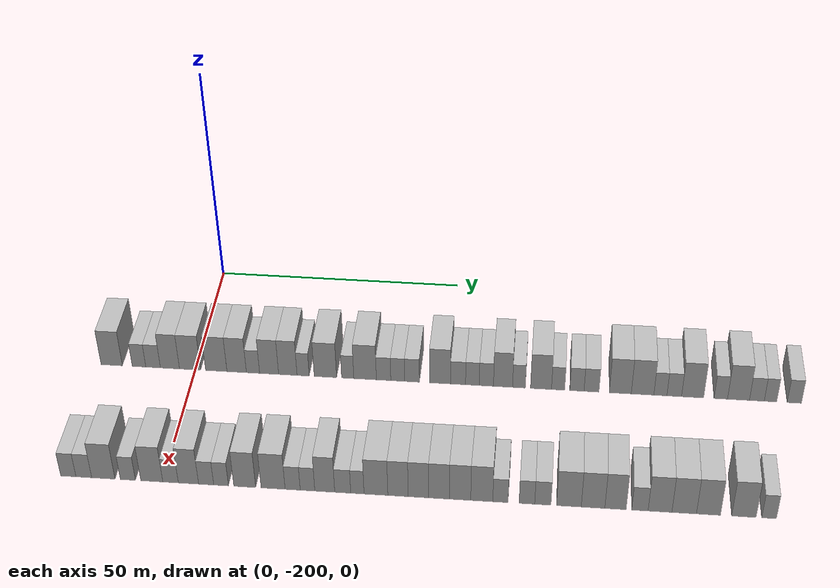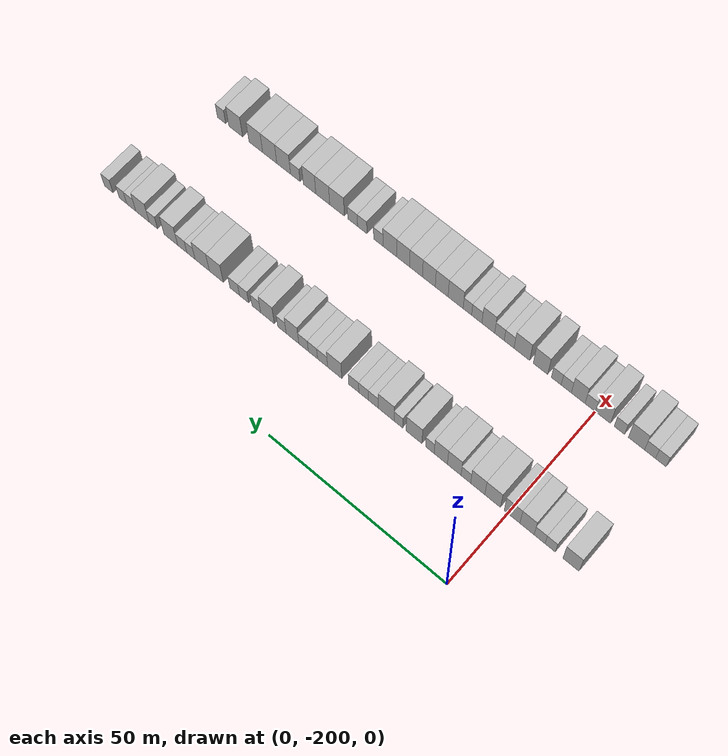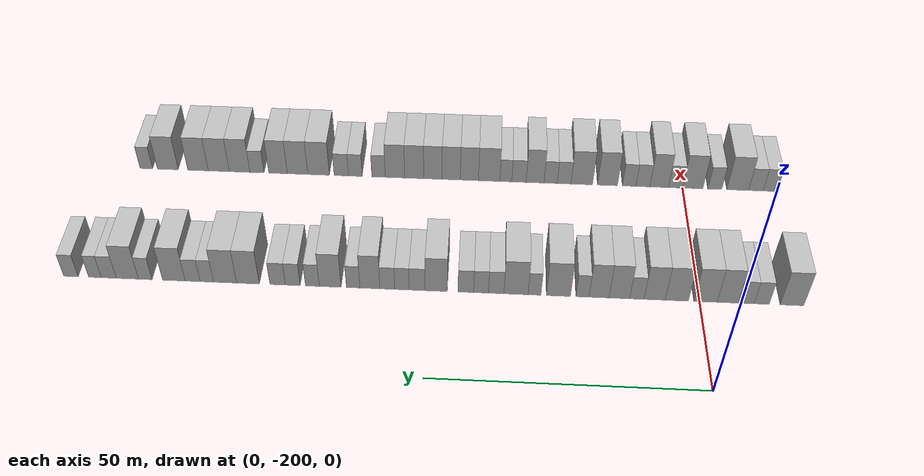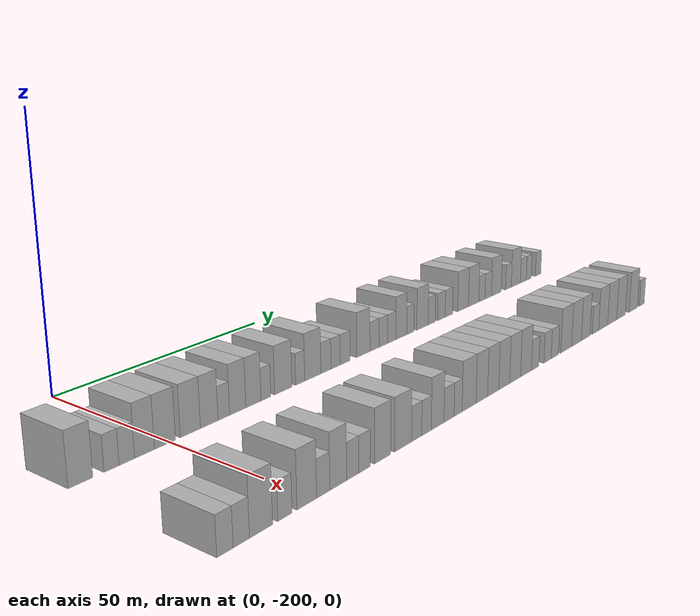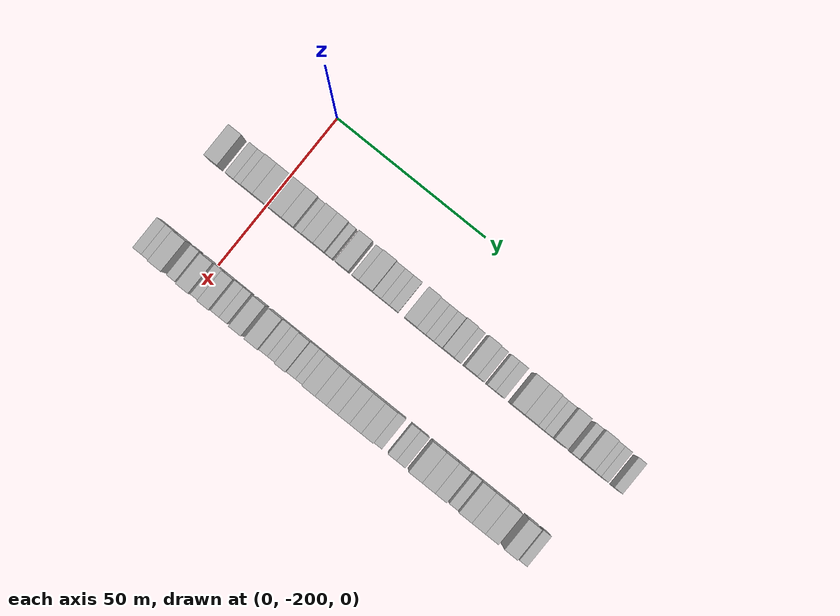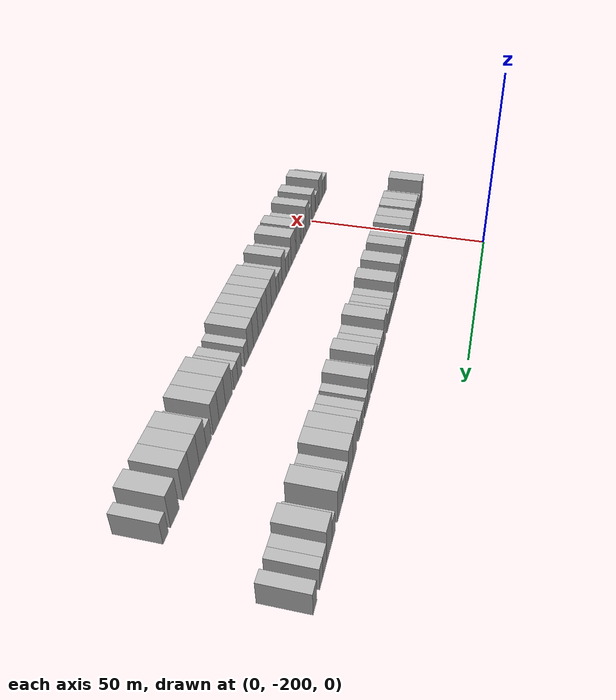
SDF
<sdf version="1.6">
 <world name="default">
  <model name="building_1">
   <static>1</static>
   <pose>25.0000 -216.8449 0 0.000000 0.000000 0.000000</pose>
   <link name="link">
    <pose>0 0 4.50 0 0 0</pose>
    <collision name="collision"><geometry><box><size>10.0000 4.3102 9.0000</size></box></geometry></collision>
    <visual name="visual">
     <cast_shadows>0</cast_shadows>
     <geometry><box><size>10.0000 4.3102 9.0000</size></box></geometry>
     <material>
      <script>
       <uri>model://HANNAS_wall/materials/scripts</uri>
       <uri>model://HANNAS_wall/materials/textures</uri>
       <name>vrc/HANNAS_wall</name>
      </script>
     </material>
    </visual>
   </link>
  </model>
  <model name="building_2">
   <static>1</static>
   <pose>25.0000 -211.3207 0 0.000000 0.000000 0.000000</pose>
   <link name="link">
    <pose>0 0 3.00 0 0 0</pose>
    <collision name="collision"><geometry><box><size>10.0000 2.7383 6.0000</size></box></geometry></collision>
    <visual name="visual">
     <cast_shadows>0</cast_shadows>
     <geometry><box><size>10.0000 2.7383 6.0000</size></box></geometry>
     <material>
      <script>
       <uri>model://HANNAS_wall/materials/scripts</uri>
       <uri>model://HANNAS_wall/materials/textures</uri>
       <name>vrc/HANNAS_wall</name>
      </script>
     </material>
    </visual>
   </link>
  </model>
  <model name="building_3">
   <static>1</static>
   <pose>25.0000 -208.4802 0 0.000000 0.000000 0.000000</pose>
   <link name="link">
    <pose>0 0 3.00 0 0 0</pose>
    <collision name="collision"><geometry><box><size>10.0000 2.9428 6.0000</size></box></geometry></collision>
    <visual name="visual">
     <cast_shadows>0</cast_shadows>
     <geometry><box><size>10.0000 2.9428 6.0000</size></box></geometry>
     <material>
      <script>
       <uri>model://HANNAS_wall/materials/scripts</uri>
       <uri>model://HANNAS_wall/materials/textures</uri>
       <name>vrc/HANNAS_wall</name>
      </script>
     </material>
    </visual>
   </link>
  </model>
  <model name="building_4">
   <static>1</static>
   <pose>25.0000 -205.0860 0 0.000000 0.000000 0.000000</pose>
   <link name="link">
    <pose>0 0 4.50 0 0 0</pose>
    <collision name="collision"><geometry><box><size>10.0000 3.8455 9.0000</size></box></geometry></collision>
    <visual name="visual">
     <cast_shadows>0</cast_shadows>
     <geometry><box><size>10.0000 3.8455 9.0000</size></box></geometry>
     <material>
      <script>
       <uri>model://HANNAS_wall/materials/scripts</uri>
       <uri>model://HANNAS_wall/materials/textures</uri>
       <name>vrc/HANNAS_wall</name>
      </script>
     </material>
    </visual>
   </link>
  </model>
  <model name="building_5">
   <static>1</static>
   <pose>25.0000 -201.0312 0 0.000000 0.000000 0.000000</pose>
   <link name="link">
    <pose>0 0 4.50 0 0 0</pose>
    <collision name="collision"><geometry><box><size>10.0000 4.2641 9.0000</size></box></geometry></collision>
    <visual name="visual">
     <cast_shadows>0</cast_shadows>
     <geometry><box><size>10.0000 4.2641 9.0000</size></box></geometry>
     <material>
      <script>
       <uri>model://HANNAS_wall/materials/scripts</uri>
       <uri>model://HANNAS_wall/materials/textures</uri>
       <name>vrc/HANNAS_wall</name>
      </script>
     </material>
    </visual>
   </link>
  </model>
  <model name="building_6">
   <static>1</static>
   <pose>25.0000 -195.7568 0 0.000000 0.000000 0.000000</pose>
   <link name="link">
    <pose>0 0 4.50 0 0 0</pose>
    <collision name="collision"><geometry><box><size>10.0000 4.2846 9.0000</size></box></geometry></collision>
    <visual name="visual">
     <cast_shadows>0</cast_shadows>
     <geometry><box><size>10.0000 4.2846 9.0000</size></box></geometry>
     <material>
      <script>
       <uri>model://HANNAS_wall/materials/scripts</uri>
       <uri>model://HANNAS_wall/materials/textures</uri>
       <name>vrc/HANNAS_wall</name>
      </script>
     </material>
    </visual>
   </link>
  </model>
  <model name="building_7">
   <static>1</static>
   <pose>25.0000 -191.6710 0 0.000000 0.000000 0.000000</pose>
   <link name="link">
    <pose>0 0 4.50 0 0 0</pose>
    <collision name="collision"><geometry><box><size>10.0000 3.8869 9.0000</size></box></geometry></collision>
    <visual name="visual">
     <cast_shadows>0</cast_shadows>
     <geometry><box><size>10.0000 3.8869 9.0000</size></box></geometry>
     <material>
      <script>
       <uri>model://HANNAS_wall/materials/scripts</uri>
       <uri>model://HANNAS_wall/materials/textures</uri>
       <name>vrc/HANNAS_wall</name>
      </script>
     </material>
    </visual>
   </link>
  </model>
  <model name="building_8">
   <static>1</static>
   <pose>25.0000 -188.4047 0 0.000000 0.000000 0.000000</pose>
   <link name="link">
    <pose>0 0 3.00 0 0 0</pose>
    <collision name="collision"><geometry><box><size>10.0000 2.6456 6.0000</size></box></geometry></collision>
    <visual name="visual">
     <cast_shadows>0</cast_shadows>
     <geometry><box><size>10.0000 2.6456 6.0000</size></box></geometry>
     <material>
      <script>
       <uri>model://HANNAS_wall/materials/scripts</uri>
       <uri>model://HANNAS_wall/materials/textures</uri>
       <name>vrc/HANNAS_wall</name>
      </script>
     </material>
    </visual>
   </link>
  </model>
  <model name="building_9">
   <static>1</static>
   <pose>25.0000 -185.1813 0 0.000000 0.000000 0.000000</pose>
   <link name="link">
    <pose>0 0 4.50 0 0 0</pose>
    <collision name="collision"><geometry><box><size>10.0000 3.8012 9.0000</size></box></geometry></collision>
    <visual name="visual">
     <cast_shadows>0</cast_shadows>
     <geometry><box><size>10.0000 3.8012 9.0000</size></box></geometry>
     <material>
      <script>
       <uri>model://HANNAS_wall/materials/scripts</uri>
       <uri>model://HANNAS_wall/materials/textures</uri>
       <name>vrc/HANNAS_wall</name>
      </script>
     </material>
    </visual>
   </link>
  </model>
  <model name="building_10">
   <static>1</static>
   <pose>25.0000 -181.4406 0 0.000000 0.000000 0.000000</pose>
   <link name="link">
    <pose>0 0 4.50 0 0 0</pose>
    <collision name="collision"><geometry><box><size>10.0000 3.6803 9.0000</size></box></geometry></collision>
    <visual name="visual">
     <cast_shadows>0</cast_shadows>
     <geometry><box><size>10.0000 3.6803 9.0000</size></box></geometry>
     <material>
      <script>
       <uri>model://HANNAS_wall/materials/scripts</uri>
       <uri>model://HANNAS_wall/materials/textures</uri>
       <name>vrc/HANNAS_wall</name>
      </script>
     </material>
    </visual>
   </link>
  </model>
  <model name="building_11">
   <static>1</static>
   <pose>25.0000 -178.3902 0 0.000000 0.000000 0.000000</pose>
   <link name="link">
    <pose>0 0 3.00 0 0 0</pose>
    <collision name="collision"><geometry><box><size>10.0000 2.4205 6.0000</size></box></geometry></collision>
    <visual name="visual">
     <cast_shadows>0</cast_shadows>
     <geometry><box><size>10.0000 2.4205 6.0000</size></box></geometry>
     <material>
      <script>
       <uri>model://HANNAS_wall/materials/scripts</uri>
       <uri>model://HANNAS_wall/materials/textures</uri>
       <name>vrc/HANNAS_wall</name>
      </script>
     </material>
    </visual>
   </link>
  </model>
  <model name="building_12">
   <static>1</static>
   <pose>25.0000 -173.9507 0 0.000000 0.000000 0.000000</pose>
   <link name="link">
    <pose>0 0 4.50 0 0 0</pose>
    <collision name="collision"><geometry><box><size>10.0000 4.4586 9.0000</size></box></geometry></collision>
    <visual name="visual">
     <cast_shadows>0</cast_shadows>
     <geometry><box><size>10.0000 4.4586 9.0000</size></box></geometry>
     <material>
      <script>
       <uri>model://HANNAS_wall/materials/scripts</uri>
       <uri>model://HANNAS_wall/materials/textures</uri>
       <name>vrc/HANNAS_wall</name>
      </script>
     </material>
    </visual>
   </link>
  </model>
  <model name="building_13">
   <static>1</static>
   <pose>25.0000 -169.5160 0 0.000000 0.000000 0.000000</pose>
   <link name="link">
    <pose>0 0 3.00 0 0 0</pose>
    <collision name="collision"><geometry><box><size>10.0000 2.4110 6.0000</size></box></geometry></collision>
    <visual name="visual">
     <cast_shadows>0</cast_shadows>
     <geometry><box><size>10.0000 2.4110 6.0000</size></box></geometry>
     <material>
      <script>
       <uri>model://HANNAS_wall/materials/scripts</uri>
       <uri>model://HANNAS_wall/materials/textures</uri>
       <name>vrc/HANNAS_wall</name>
      </script>
     </material>
    </visual>
   </link>
  </model>
  <model name="building_14">
   <static>1</static>
   <pose>25.0000 -166.0705 0 0.000000 0.000000 0.000000</pose>
   <link name="link">
    <pose>0 0 4.50 0 0 0</pose>
    <collision name="collision"><geometry><box><size>10.0000 4.4799 9.0000</size></box></geometry></collision>
    <visual name="visual">
     <cast_shadows>0</cast_shadows>
     <geometry><box><size>10.0000 4.4799 9.0000</size></box></geometry>
     <material>
      <script>
       <uri>model://HANNAS_wall/materials/scripts</uri>
       <uri>model://HANNAS_wall/materials/textures</uri>
       <name>vrc/HANNAS_wall</name>
      </script>
     </material>
    </visual>
   </link>
  </model>
  <model name="building_15">
   <static>1</static>
   <pose>25.0000 -162.4017 0 0.000000 0.000000 0.000000</pose>
   <link name="link">
    <pose>0 0 3.00 0 0 0</pose>
    <collision name="collision"><geometry><box><size>10.0000 2.8579 6.0000</size></box></geometry></collision>
    <visual name="visual">
     <cast_shadows>0</cast_shadows>
     <geometry><box><size>10.0000 2.8579 6.0000</size></box></geometry>
     <material>
      <script>
       <uri>model://HANNAS_wall/materials/scripts</uri>
       <uri>model://HANNAS_wall/materials/textures</uri>
       <name>vrc/HANNAS_wall</name>
      </script>
     </material>
    </visual>
   </link>
  </model>
  <model name="building_16">
   <static>1</static>
   <pose>25.0000 -159.5947 0 0.000000 0.000000 0.000000</pose>
   <link name="link">
    <pose>0 0 3.00 0 0 0</pose>
    <collision name="collision"><geometry><box><size>10.0000 2.7561 6.0000</size></box></geometry></collision>
    <visual name="visual">
     <cast_shadows>0</cast_shadows>
     <geometry><box><size>10.0000 2.7561 6.0000</size></box></geometry>
     <material>
      <script>
       <uri>model://HANNAS_wall/materials/scripts</uri>
       <uri>model://HANNAS_wall/materials/textures</uri>
       <name>vrc/HANNAS_wall</name>
      </script>
     </material>
    </visual>
   </link>
  </model>
  <model name="building_17">
   <static>1</static>
   <pose>25.0000 -156.7591 0 0.000000 0.000000 0.000000</pose>
   <link name="link">
    <pose>0 0 3.00 0 0 0</pose>
    <collision name="collision"><geometry><box><size>10.0000 2.9151 6.0000</size></box></geometry></collision>
    <visual name="visual">
     <cast_shadows>0</cast_shadows>
     <geometry><box><size>10.0000 2.9151 6.0000</size></box></geometry>
     <material>
      <script>
       <uri>model://HANNAS_wall/materials/scripts</uri>
       <uri>model://HANNAS_wall/materials/textures</uri>
       <name>vrc/HANNAS_wall</name>
      </script>
     </material>
    </visual>
   </link>
  </model>
  <model name="building_18">
   <static>1</static>
   <pose>25.0000 -151.2368 0 0.000000 0.000000 0.000000</pose>
   <link name="link">
    <pose>0 0 4.50 0 0 0</pose>
    <collision name="collision"><geometry><box><size>10.0000 4.1294 9.0000</size></box></geometry></collision>
    <visual name="visual">
     <cast_shadows>0</cast_shadows>
     <geometry><box><size>10.0000 4.1294 9.0000</size></box></geometry>
     <material>
      <script>
       <uri>model://HANNAS_wall/materials/scripts</uri>
       <uri>model://HANNAS_wall/materials/textures</uri>
       <name>vrc/HANNAS_wall</name>
      </script>
     </material>
    </visual>
   </link>
  </model>
  <model name="building_19">
   <static>1</static>
   <pose>25.0000 -147.6917 0 0.000000 0.000000 0.000000</pose>
   <link name="link">
    <pose>0 0 3.00 0 0 0</pose>
    <collision name="collision"><geometry><box><size>10.0000 2.9608 6.0000</size></box></geometry></collision>
    <visual name="visual">
     <cast_shadows>0</cast_shadows>
     <geometry><box><size>10.0000 2.9608 6.0000</size></box></geometry>
     <material>
      <script>
       <uri>model://HANNAS_wall/materials/scripts</uri>
       <uri>model://HANNAS_wall/materials/textures</uri>
       <name>vrc/HANNAS_wall</name>
      </script>
     </material>
    </visual>
   </link>
  </model>
  <model name="building_20">
   <static>1</static>
   <pose>25.0000 -144.8623 0 0.000000 0.000000 0.000000</pose>
   <link name="link">
    <pose>0 0 3.00 0 0 0</pose>
    <collision name="collision"><geometry><box><size>10.0000 2.6980 6.0000</size></box></geometry></collision>
    <visual name="visual">
     <cast_shadows>0</cast_shadows>
     <geometry><box><size>10.0000 2.6980 6.0000</size></box></geometry>
     <material>
      <script>
       <uri>model://HANNAS_wall/materials/scripts</uri>
       <uri>model://HANNAS_wall/materials/textures</uri>
       <name>vrc/HANNAS_wall</name>
      </script>
     </material>
    </visual>
   </link>
  </model>
  <model name="building_21">
   <static>1</static>
   <pose>25.0000 -142.1148 0 0.000000 0.000000 0.000000</pose>
   <link name="link">
    <pose>0 0 3.00 0 0 0</pose>
    <collision name="collision"><geometry><box><size>10.0000 2.7970 6.0000</size></box></geometry></collision>
    <visual name="visual">
     <cast_shadows>0</cast_shadows>
     <geometry><box><size>10.0000 2.7970 6.0000</size></box></geometry>
     <material>
      <script>
       <uri>model://HANNAS_wall/materials/scripts</uri>
       <uri>model://HANNAS_wall/materials/textures</uri>
       <name>vrc/HANNAS_wall</name>
      </script>
     </material>
    </visual>
   </link>
  </model>
  <model name="building_22">
   <static>1</static>
   <pose>25.0000 -138.8480 0 0.000000 0.000000 0.000000</pose>
   <link name="link">
    <pose>0 0 4.50 0 0 0</pose>
    <collision name="collision"><geometry><box><size>10.0000 3.7365 9.0000</size></box></geometry></collision>
    <visual name="visual">
     <cast_shadows>0</cast_shadows>
     <geometry><box><size>10.0000 3.7365 9.0000</size></box></geometry>
     <material>
      <script>
       <uri>model://HANNAS_wall/materials/scripts</uri>
       <uri>model://HANNAS_wall/materials/textures</uri>
       <name>vrc/HANNAS_wall</name>
      </script>
     </material>
    </visual>
   </link>
  </model>
  <model name="building_23">
   <static>1</static>
   <pose>25.0000 -135.7185 0 0.000000 0.000000 0.000000</pose>
   <link name="link">
    <pose>0 0 3.00 0 0 0</pose>
    <collision name="collision"><geometry><box><size>10.0000 2.5227 6.0000</size></box></geometry></collision>
    <visual name="visual">
     <cast_shadows>0</cast_shadows>
     <geometry><box><size>10.0000 2.5227 6.0000</size></box></geometry>
     <material>
      <script>
       <uri>model://HANNAS_wall/materials/scripts</uri>
       <uri>model://HANNAS_wall/materials/textures</uri>
       <name>vrc/HANNAS_wall</name>
      </script>
     </material>
    </visual>
   </link>
  </model>
  <model name="building_24">
   <static>1</static>
   <pose>25.0000 -131.4101 0 0.000000 0.000000 0.000000</pose>
   <link name="link">
    <pose>0 0 4.50 0 0 0</pose>
    <collision name="collision"><geometry><box><size>10.0000 4.0940 9.0000</size></box></geometry></collision>
    <visual name="visual">
     <cast_shadows>0</cast_shadows>
     <geometry><box><size>10.0000 4.0940 9.0000</size></box></geometry>
     <material>
      <script>
       <uri>model://HANNAS_wall/materials/scripts</uri>
       <uri>model://HANNAS_wall/materials/textures</uri>
       <name>vrc/HANNAS_wall</name>
      </script>
     </material>
    </visual>
   </link>
  </model>
  <model name="building_25">
   <static>1</static>
   <pose>25.0000 -128.0672 0 0.000000 0.000000 0.000000</pose>
   <link name="link">
    <pose>0 0 3.00 0 0 0</pose>
    <collision name="collision"><geometry><box><size>10.0000 2.5918 6.0000</size></box></geometry></collision>
    <visual name="visual">
     <cast_shadows>0</cast_shadows>
     <geometry><box><size>10.0000 2.5918 6.0000</size></box></geometry>
     <material>
      <script>
       <uri>model://HANNAS_wall/materials/scripts</uri>
       <uri>model://HANNAS_wall/materials/textures</uri>
       <name>vrc/HANNAS_wall</name>
      </script>
     </material>
    </visual>
   </link>
  </model>
  <model name="building_26">
   <static>1</static>
   <pose>25.0000 -124.3897 0 0.000000 0.000000 0.000000</pose>
   <link name="link">
    <pose>0 0 3.00 0 0 0</pose>
    <collision name="collision"><geometry><box><size>10.0000 2.7630 6.0000</size></box></geometry></collision>
    <visual name="visual">
     <cast_shadows>0</cast_shadows>
     <geometry><box><size>10.0000 2.7630 6.0000</size></box></geometry>
     <material>
      <script>
       <uri>model://HANNAS_wall/materials/scripts</uri>
       <uri>model://HANNAS_wall/materials/textures</uri>
       <name>vrc/HANNAS_wall</name>
      </script>
     </material>
    </visual>
   </link>
  </model>
  <model name="building_27">
   <static>1</static>
   <pose>25.0000 -121.5438 0 0.000000 0.000000 0.000000</pose>
   <link name="link">
    <pose>0 0 3.00 0 0 0</pose>
    <collision name="collision"><geometry><box><size>10.0000 2.9288 6.0000</size></box></geometry></collision>
    <visual name="visual">
     <cast_shadows>0</cast_shadows>
     <geometry><box><size>10.0000 2.9288 6.0000</size></box></geometry>
     <material>
      <script>
       <uri>model://HANNAS_wall/materials/scripts</uri>
       <uri>model://HANNAS_wall/materials/textures</uri>
       <name>vrc/HANNAS_wall</name>
      </script>
     </material>
    </visual>
   </link>
  </model>
  <model name="building_28">
   <static>1</static>
   <pose>25.0000 -115.9444 0 0.000000 0.000000 0.000000</pose>
   <link name="link">
    <pose>0 0 4.50 0 0 0</pose>
    <collision name="collision"><geometry><box><size>10.0000 4.2701 9.0000</size></box></geometry></collision>
    <visual name="visual">
     <cast_shadows>0</cast_shadows>
     <geometry><box><size>10.0000 4.2701 9.0000</size></box></geometry>
     <material>
      <script>
       <uri>model://HANNAS_wall/materials/scripts</uri>
       <uri>model://HANNAS_wall/materials/textures</uri>
       <name>vrc/HANNAS_wall</name>
      </script>
     </material>
    </visual>
   </link>
  </model>
  <model name="building_29">
   <static>1</static>
   <pose>25.0000 -111.6163 0 0.000000 0.000000 0.000000</pose>
   <link name="link">
    <pose>0 0 4.50 0 0 0</pose>
    <collision name="collision"><geometry><box><size>10.0000 4.3861 9.0000</size></box></geometry></collision>
    <visual name="visual">
     <cast_shadows>0</cast_shadows>
     <geometry><box><size>10.0000 4.3861 9.0000</size></box></geometry>
     <material>
      <script>
       <uri>model://HANNAS_wall/materials/scripts</uri>
       <uri>model://HANNAS_wall/materials/textures</uri>
       <name>vrc/HANNAS_wall</name>
      </script>
     </material>
    </visual>
   </link>
  </model>
  <model name="building_30">
   <static>1</static>
   <pose>25.0000 -108.1566 0 0.000000 0.000000 0.000000</pose>
   <link name="link">
    <pose>0 0 3.00 0 0 0</pose>
    <collision name="collision"><geometry><box><size>10.0000 2.5332 6.0000</size></box></geometry></collision>
    <visual name="visual">
     <cast_shadows>0</cast_shadows>
     <geometry><box><size>10.0000 2.5332 6.0000</size></box></geometry>
     <material>
      <script>
       <uri>model://HANNAS_wall/materials/scripts</uri>
       <uri>model://HANNAS_wall/materials/textures</uri>
       <name>vrc/HANNAS_wall</name>
      </script>
     </material>
    </visual>
   </link>
  </model>
  <model name="building_31">
   <static>1</static>
   <pose>25.0000 -105.4735 0 0.000000 0.000000 0.000000</pose>
   <link name="link">
    <pose>0 0 3.00 0 0 0</pose>
    <collision name="collision"><geometry><box><size>10.0000 2.8330 6.0000</size></box></geometry></collision>
    <visual name="visual">
     <cast_shadows>0</cast_shadows>
     <geometry><box><size>10.0000 2.8330 6.0000</size></box></geometry>
     <material>
      <script>
       <uri>model://HANNAS_wall/materials/scripts</uri>
       <uri>model://HANNAS_wall/materials/textures</uri>
       <name>vrc/HANNAS_wall</name>
      </script>
     </material>
    </visual>
   </link>
  </model>
  <model name="building_32">
   <static>1</static>
   <pose>25.0000 -101.9138 0 0.000000 0.000000 0.000000</pose>
   <link name="link">
    <pose>0 0 4.50 0 0 0</pose>
    <collision name="collision"><geometry><box><size>10.0000 4.2863 9.0000</size></box></geometry></collision>
    <visual name="visual">
     <cast_shadows>0</cast_shadows>
     <geometry><box><size>10.0000 4.2863 9.0000</size></box></geometry>
     <material>
      <script>
       <uri>model://HANNAS_wall/materials/scripts</uri>
       <uri>model://HANNAS_wall/materials/textures</uri>
       <name>vrc/HANNAS_wall</name>
      </script>
     </material>
    </visual>
   </link>
  </model>
  <model name="building_33">
   <static>1</static>
   <pose>25.0000 -96.4714 0 0.000000 0.000000 0.000000</pose>
   <link name="link">
    <pose>0 0 3.00 0 0 0</pose>
    <collision name="collision"><geometry><box><size>10.0000 2.5985 6.0000</size></box></geometry></collision>
    <visual name="visual">
     <cast_shadows>0</cast_shadows>
     <geometry><box><size>10.0000 2.5985 6.0000</size></box></geometry>
     <material>
      <script>
       <uri>model://HANNAS_wall/materials/scripts</uri>
       <uri>model://HANNAS_wall/materials/textures</uri>
       <name>vrc/HANNAS_wall</name>
      </script>
     </material>
    </visual>
   </link>
  </model>
  <model name="building_34">
   <static>1</static>
   <pose>25.0000 -93.0581 0 0.000000 0.000000 0.000000</pose>
   <link name="link">
    <pose>0 0 4.50 0 0 0</pose>
    <collision name="collision"><geometry><box><size>10.0000 4.2281 9.0000</size></box></geometry></collision>
    <visual name="visual">
     <cast_shadows>0</cast_shadows>
     <geometry><box><size>10.0000 4.2281 9.0000</size></box></geometry>
     <material>
      <script>
       <uri>model://HANNAS_wall/materials/scripts</uri>
       <uri>model://HANNAS_wall/materials/textures</uri>
       <name>vrc/HANNAS_wall</name>
      </script>
     </material>
    </visual>
   </link>
  </model>
  <model name="building_35">
   <static>1</static>
   <pose>25.0000 -89.5217 0 0.000000 0.000000 0.000000</pose>
   <link name="link">
    <pose>0 0 3.00 0 0 0</pose>
    <collision name="collision"><geometry><box><size>10.0000 2.8448 6.0000</size></box></geometry></collision>
    <visual name="visual">
     <cast_shadows>0</cast_shadows>
     <geometry><box><size>10.0000 2.8448 6.0000</size></box></geometry>
     <material>
      <script>
       <uri>model://HANNAS_wall/materials/scripts</uri>
       <uri>model://HANNAS_wall/materials/textures</uri>
       <name>vrc/HANNAS_wall</name>
      </script>
     </material>
    </visual>
   </link>
  </model>
  <model name="building_36">
   <static>1</static>
   <pose>25.0000 -86.8919 0 0.000000 0.000000 0.000000</pose>
   <link name="link">
    <pose>0 0 3.00 0 0 0</pose>
    <collision name="collision"><geometry><box><size>10.0000 2.4148 6.0000</size></box></geometry></collision>
    <visual name="visual">
     <cast_shadows>0</cast_shadows>
     <geometry><box><size>10.0000 2.4148 6.0000</size></box></geometry>
     <material>
      <script>
       <uri>model://HANNAS_wall/materials/scripts</uri>
       <uri>model://HANNAS_wall/materials/textures</uri>
       <name>vrc/HANNAS_wall</name>
      </script>
     </material>
    </visual>
   </link>
  </model>
  <model name="building_37">
   <static>1</static>
   <pose>25.0000 -82.3169 0 0.000000 0.000000 0.000000</pose>
   <link name="link">
    <pose>0 0 3.00 0 0 0</pose>
    <collision name="collision"><geometry><box><size>10.0000 2.7351 6.0000</size></box></geometry></collision>
    <visual name="visual">
     <cast_shadows>0</cast_shadows>
     <geometry><box><size>10.0000 2.7351 6.0000</size></box></geometry>
     <material>
      <script>
       <uri>model://HANNAS_wall/materials/scripts</uri>
       <uri>model://HANNAS_wall/materials/textures</uri>
       <name>vrc/HANNAS_wall</name>
      </script>
     </material>
    </visual>
   </link>
  </model>
  <model name="building_111">
   <static>1</static>
   <pose>55.0000 -217.5729 0 0.000000 0.000000 0.000000</pose>
   <link name="link">
    <pose>0 0 3.00 0 0 0</pose>
    <collision name="collision"><geometry><box><size>10.0000 2.8542 6.0000</size></box></geometry></collision>
    <visual name="visual">
     <cast_shadows>0</cast_shadows>
     <geometry><box><size>10.0000 2.8542 6.0000</size></box></geometry>
     <material>
      <script>
       <uri>model://HANNAS_wall/materials/scripts</uri>
       <uri>model://HANNAS_wall/materials/textures</uri>
       <name>vrc/HANNAS_wall</name>
      </script>
     </material>
    </visual>
   </link>
  </model>
  <model name="building_112">
   <static>1</static>
   <pose>55.0000 -214.6697 0 0.000000 0.000000 0.000000</pose>
   <link name="link">
    <pose>0 0 3.00 0 0 0</pose>
    <collision name="collision"><geometry><box><size>10.0000 2.9522 6.0000</size></box></geometry></collision>
    <visual name="visual">
     <cast_shadows>0</cast_shadows>
     <geometry><box><size>10.0000 2.9522 6.0000</size></box></geometry>
     <material>
      <script>
       <uri>model://HANNAS_wall/materials/scripts</uri>
       <uri>model://HANNAS_wall/materials/textures</uri>
       <name>vrc/HANNAS_wall</name>
      </script>
     </material>
    </visual>
   </link>
  </model>
  <model name="building_113">
   <static>1</static>
   <pose>55.0000 -211.0106 0 0.000000 0.000000 0.000000</pose>
   <link name="link">
    <pose>0 0 4.50 0 0 0</pose>
    <collision name="collision"><geometry><box><size>10.0000 4.3660 9.0000</size></box></geometry></collision>
    <visual name="visual">
     <cast_shadows>0</cast_shadows>
     <geometry><box><size>10.0000 4.3660 9.0000</size></box></geometry>
     <material>
      <script>
       <uri>model://HANNAS_wall/materials/scripts</uri>
       <uri>model://HANNAS_wall/materials/textures</uri>
       <name>vrc/HANNAS_wall</name>
      </script>
     </material>
    </visual>
   </link>
  </model>
  <model name="building_114">
   <static>1</static>
   <pose>55.0000 -206.4182 0 0.000000 0.000000 0.000000</pose>
   <link name="link">
    <pose>0 0 3.00 0 0 0</pose>
    <collision name="collision"><geometry><box><size>10.0000 2.8189 6.0000</size></box></geometry></collision>
    <visual name="visual">
     <cast_shadows>0</cast_shadows>
     <geometry><box><size>10.0000 2.8189 6.0000</size></box></geometry>
     <material>
      <script>
       <uri>model://HANNAS_wall/materials/scripts</uri>
       <uri>model://HANNAS_wall/materials/textures</uri>
       <name>vrc/HANNAS_wall</name>
      </script>
     </material>
    </visual>
   </link>
  </model>
  <model name="building_115">
   <static>1</static>
   <pose>55.0000 -201.9527 0 0.000000 0.000000 0.000000</pose>
   <link name="link">
    <pose>0 0 4.50 0 0 0</pose>
    <collision name="collision"><geometry><box><size>10.0000 4.1122 9.0000</size></box></geometry></collision>
    <visual name="visual">
     <cast_shadows>0</cast_shadows>
     <geometry><box><size>10.0000 4.1122 9.0000</size></box></geometry>
     <material>
      <script>
       <uri>model://HANNAS_wall/materials/scripts</uri>
       <uri>model://HANNAS_wall/materials/textures</uri>
       <name>vrc/HANNAS_wall</name>
      </script>
     </material>
    </visual>
   </link>
  </model>
  <model name="building_116">
   <static>1</static>
   <pose>55.0000 -198.4554 0 0.000000 0.000000 0.000000</pose>
   <link name="link">
    <pose>0 0 3.00 0 0 0</pose>
    <collision name="collision"><geometry><box><size>10.0000 2.8824 6.0000</size></box></geometry></collision>
    <visual name="visual">
     <cast_shadows>0</cast_shadows>
     <geometry><box><size>10.0000 2.8824 6.0000</size></box></geometry>
     <material>
      <script>
       <uri>model://HANNAS_wall/materials/scripts</uri>
       <uri>model://HANNAS_wall/materials/textures</uri>
       <name>vrc/HANNAS_wall</name>
      </script>
     </material>
    </visual>
   </link>
  </model>
  <model name="building_117">
   <static>1</static>
   <pose>55.0000 -195.1298 0 0.000000 0.000000 0.000000</pose>
   <link name="link">
    <pose>0 0 4.50 0 0 0</pose>
    <collision name="collision"><geometry><box><size>10.0000 3.7687 9.0000</size></box></geometry></collision>
    <visual name="visual">
     <cast_shadows>0</cast_shadows>
     <geometry><box><size>10.0000 3.7687 9.0000</size></box></geometry>
     <material>
      <script>
       <uri>model://HANNAS_wall/materials/scripts</uri>
       <uri>model://HANNAS_wall/materials/textures</uri>
       <name>vrc/HANNAS_wall</name>
      </script>
     </material>
    </visual>
   </link>
  </model>
  <model name="building_118">
   <static>1</static>
   <pose>55.0000 -191.8408 0 0.000000 0.000000 0.000000</pose>
   <link name="link">
    <pose>0 0 3.00 0 0 0</pose>
    <collision name="collision"><geometry><box><size>10.0000 2.8093 6.0000</size></box></geometry></collision>
    <visual name="visual">
     <cast_shadows>0</cast_shadows>
     <geometry><box><size>10.0000 2.8093 6.0000</size></box></geometry>
     <material>
      <script>
       <uri>model://HANNAS_wall/materials/scripts</uri>
       <uri>model://HANNAS_wall/materials/textures</uri>
       <name>vrc/HANNAS_wall</name>
      </script>
     </material>
    </visual>
   </link>
  </model>
  <model name="building_119">
   <static>1</static>
   <pose>55.0000 -189.0695 0 0.000000 0.000000 0.000000</pose>
   <link name="link">
    <pose>0 0 3.00 0 0 0</pose>
    <collision name="collision"><geometry><box><size>10.0000 2.7333 6.0000</size></box></geometry></collision>
    <visual name="visual">
     <cast_shadows>0</cast_shadows>
     <geometry><box><size>10.0000 2.7333 6.0000</size></box></geometry>
     <material>
      <script>
       <uri>model://HANNAS_wall/materials/scripts</uri>
       <uri>model://HANNAS_wall/materials/textures</uri>
       <name>vrc/HANNAS_wall</name>
      </script>
     </material>
    </visual>
   </link>
  </model>
  <model name="building_120">
   <static>1</static>
   <pose>55.0000 -184.6798 0 0.000000 0.000000 0.000000</pose>
   <link name="link">
    <pose>0 0 4.50 0 0 0</pose>
    <collision name="collision"><geometry><box><size>10.0000 4.0461 9.0000</size></box></geometry></collision>
    <visual name="visual">
     <cast_shadows>0</cast_shadows>
     <geometry><box><size>10.0000 4.0461 9.0000</size></box></geometry>
     <material>
      <script>
       <uri>model://HANNAS_wall/materials/scripts</uri>
       <uri>model://HANNAS_wall/materials/textures</uri>
       <name>vrc/HANNAS_wall</name>
      </script>
     </material>
    </visual>
   </link>
  </model>
  <model name="building_121">
   <static>1</static>
   <pose>55.0000 -179.4436 0 0.000000 0.000000 0.000000</pose>
   <link name="link">
    <pose>0 0 4.50 0 0 0</pose>
    <collision name="collision"><geometry><box><size>10.0000 4.4262 9.0000</size></box></geometry></collision>
    <visual name="visual">
     <cast_shadows>0</cast_shadows>
     <geometry><box><size>10.0000 4.4262 9.0000</size></box></geometry>
     <material>
      <script>
       <uri>model://HANNAS_wall/materials/scripts</uri>
       <uri>model://HANNAS_wall/materials/textures</uri>
       <name>vrc/HANNAS_wall</name>
      </script>
     </material>
    </visual>
   </link>
  </model>
  <model name="building_122">
   <static>1</static>
   <pose>55.0000 -175.8394 0 0.000000 0.000000 0.000000</pose>
   <link name="link">
    <pose>0 0 3.00 0 0 0</pose>
    <collision name="collision"><geometry><box><size>10.0000 2.7822 6.0000</size></box></geometry></collision>
    <visual name="visual">
     <cast_shadows>0</cast_shadows>
     <geometry><box><size>10.0000 2.7822 6.0000</size></box></geometry>
     <material>
      <script>
       <uri>model://HANNAS_wall/materials/scripts</uri>
       <uri>model://HANNAS_wall/materials/textures</uri>
       <name>vrc/HANNAS_wall</name>
      </script>
     </material>
    </visual>
   </link>
  </model>
  <model name="building_123">
   <static>1</static>
   <pose>55.0000 -173.1026 0 0.000000 0.000000 0.000000</pose>
   <link name="link">
    <pose>0 0 3.00 0 0 0</pose>
    <collision name="collision"><geometry><box><size>10.0000 2.6913 6.0000</size></box></geometry></collision>
    <visual name="visual">
     <cast_shadows>0</cast_shadows>
     <geometry><box><size>10.0000 2.6913 6.0000</size></box></geometry>
     <material>
      <script>
       <uri>model://HANNAS_wall/materials/scripts</uri>
       <uri>model://HANNAS_wall/materials/textures</uri>
       <name>vrc/HANNAS_wall</name>
      </script>
     </material>
    </visual>
   </link>
  </model>
  <model name="building_124">
   <static>1</static>
   <pose>55.0000 -169.9265 0 0.000000 0.000000 0.000000</pose>
   <link name="link">
    <pose>0 0 4.50 0 0 0</pose>
    <collision name="collision"><geometry><box><size>10.0000 3.6608 9.0000</size></box></geometry></collision>
    <visual name="visual">
     <cast_shadows>0</cast_shadows>
     <geometry><box><size>10.0000 3.6608 9.0000</size></box></geometry>
     <material>
      <script>
       <uri>model://HANNAS_wall/materials/scripts</uri>
       <uri>model://HANNAS_wall/materials/textures</uri>
       <name>vrc/HANNAS_wall</name>
      </script>
     </material>
    </visual>
   </link>
  </model>
  <model name="building_125">
   <static>1</static>
   <pose>55.0000 -166.6266 0 0.000000 0.000000 0.000000</pose>
   <link name="link">
    <pose>0 0 3.00 0 0 0</pose>
    <collision name="collision"><geometry><box><size>10.0000 2.9390 6.0000</size></box></geometry></collision>
    <visual name="visual">
     <cast_shadows>0</cast_shadows>
     <geometry><box><size>10.0000 2.9390 6.0000</size></box></geometry>
     <material>
      <script>
       <uri>model://HANNAS_wall/materials/scripts</uri>
       <uri>model://HANNAS_wall/materials/textures</uri>
       <name>vrc/HANNAS_wall</name>
      </script>
     </material>
    </visual>
   </link>
  </model>
  <model name="building_126">
   <static>1</static>
   <pose>55.0000 -163.9374 0 0.000000 0.000000 0.000000</pose>
   <link name="link">
    <pose>0 0 3.00 0 0 0</pose>
    <collision name="collision"><geometry><box><size>10.0000 2.4394 6.0000</size></box></geometry></collision>
    <visual name="visual">
     <cast_shadows>0</cast_shadows>
     <geometry><box><size>10.0000 2.4394 6.0000</size></box></geometry>
     <material>
      <script>
       <uri>model://HANNAS_wall/materials/scripts</uri>
       <uri>model://HANNAS_wall/materials/textures</uri>
       <name>vrc/HANNAS_wall</name>
      </script>
     </material>
    </visual>
   </link>
  </model>
  <model name="building_127">
   <static>1</static>
   <pose>55.0000 -160.5369 0 0.000000 0.000000 0.000000</pose>
   <link name="link">
    <pose>0 0 4.50 0 0 0</pose>
    <collision name="collision"><geometry><box><size>10.0000 4.3617 9.0000</size></box></geometry></collision>
    <visual name="visual">
     <cast_shadows>0</cast_shadows>
     <geometry><box><size>10.0000 4.3617 9.0000</size></box></geometry>
     <material>
      <script>
       <uri>model://HANNAS_wall/materials/scripts</uri>
       <uri>model://HANNAS_wall/materials/textures</uri>
       <name>vrc/HANNAS_wall</name>
      </script>
     </material>
    </visual>
   </link>
  </model>
  <model name="building_128">
   <static>1</static>
   <pose>55.0000 -156.4939 0 0.000000 0.000000 0.000000</pose>
   <link name="link">
    <pose>0 0 4.50 0 0 0</pose>
    <collision name="collision"><geometry><box><size>10.0000 3.7242 9.0000</size></box></geometry></collision>
    <visual name="visual">
     <cast_shadows>0</cast_shadows>
     <geometry><box><size>10.0000 3.7242 9.0000</size></box></geometry>
     <material>
      <script>
       <uri>model://HANNAS_wall/materials/scripts</uri>
       <uri>model://HANNAS_wall/materials/textures</uri>
       <name>vrc/HANNAS_wall</name>
      </script>
     </material>
    </visual>
   </link>
  </model>
  <model name="building_129">
   <static>1</static>
   <pose>55.0000 -152.7629 0 0.000000 0.000000 0.000000</pose>
   <link name="link">
    <pose>0 0 4.50 0 0 0</pose>
    <collision name="collision"><geometry><box><size>10.0000 3.7380 9.0000</size></box></geometry></collision>
    <visual name="visual">
     <cast_shadows>0</cast_shadows>
     <geometry><box><size>10.0000 3.7380 9.0000</size></box></geometry>
     <material>
      <script>
       <uri>model://HANNAS_wall/materials/scripts</uri>
       <uri>model://HANNAS_wall/materials/textures</uri>
       <name>vrc/HANNAS_wall</name>
      </script>
     </material>
    </visual>
   </link>
  </model>
  <model name="building_130">
   <static>1</static>
   <pose>55.0000 -149.0125 0 0.000000 0.000000 0.000000</pose>
   <link name="link">
    <pose>0 0 4.50 0 0 0</pose>
    <collision name="collision"><geometry><box><size>10.0000 3.7626 9.0000</size></box></geometry></collision>
    <visual name="visual">
     <cast_shadows>0</cast_shadows>
     <geometry><box><size>10.0000 3.7626 9.0000</size></box></geometry>
     <material>
      <script>
       <uri>model://HANNAS_wall/materials/scripts</uri>
       <uri>model://HANNAS_wall/materials/textures</uri>
       <name>vrc/HANNAS_wall</name>
      </script>
     </material>
    </visual>
   </link>
  </model>
  <model name="building_131">
   <static>1</static>
   <pose>55.0000 -145.1797 0 0.000000 0.000000 0.000000</pose>
   <link name="link">
    <pose>0 0 4.50 0 0 0</pose>
    <collision name="collision"><geometry><box><size>10.0000 3.9030 9.0000</size></box></geometry></collision>
    <visual name="visual">
     <cast_shadows>0</cast_shadows>
     <geometry><box><size>10.0000 3.9030 9.0000</size></box></geometry>
     <material>
      <script>
       <uri>model://HANNAS_wall/materials/scripts</uri>
       <uri>model://HANNAS_wall/materials/textures</uri>
       <name>vrc/HANNAS_wall</name>
      </script>
     </material>
    </visual>
   </link>
  </model>
  <model name="building_132">
   <static>1</static>
   <pose>55.0000 -141.2261 0 0.000000 0.000000 0.000000</pose>
   <link name="link">
    <pose>0 0 4.50 0 0 0</pose>
    <collision name="collision"><geometry><box><size>10.0000 4.0042 9.0000</size></box></geometry></collision>
    <visual name="visual">
     <cast_shadows>0</cast_shadows>
     <geometry><box><size>10.0000 4.0042 9.0000</size></box></geometry>
     <material>
      <script>
       <uri>model://HANNAS_wall/materials/scripts</uri>
       <uri>model://HANNAS_wall/materials/textures</uri>
       <name>vrc/HANNAS_wall</name>
      </script>
     </material>
    </visual>
   </link>
  </model>
  <model name="building_133">
   <static>1</static>
   <pose>55.0000 -137.8401 0 0.000000 0.000000 0.000000</pose>
   <link name="link">
    <pose>0 0 3.00 0 0 0</pose>
    <collision name="collision"><geometry><box><size>10.0000 2.7678 6.0000</size></box></geometry></collision>
    <visual name="visual">
     <cast_shadows>0</cast_shadows>
     <geometry><box><size>10.0000 2.7678 6.0000</size></box></geometry>
     <material>
      <script>
       <uri>model://HANNAS_wall/materials/scripts</uri>
       <uri>model://HANNAS_wall/materials/textures</uri>
       <name>vrc/HANNAS_wall</name>
      </script>
     </material>
    </visual>
   </link>
  </model>
  <model name="building_134">
   <static>1</static>
   <pose>55.0000 -133.0464 0 0.000000 0.000000 0.000000</pose>
   <link name="link">
    <pose>0 0 3.00 0 0 0</pose>
    <collision name="collision"><geometry><box><size>10.0000 2.8195 6.0000</size></box></geometry></collision>
    <visual name="visual">
     <cast_shadows>0</cast_shadows>
     <geometry><box><size>10.0000 2.8195 6.0000</size></box></geometry>
     <material>
      <script>
       <uri>model://HANNAS_wall/materials/scripts</uri>
       <uri>model://HANNAS_wall/materials/textures</uri>
       <name>vrc/HANNAS_wall</name>
      </script>
     </material>
    </visual>
   </link>
  </model>
  <model name="building_135">
   <static>1</static>
   <pose>55.0000 -130.1620 0 0.000000 0.000000 0.000000</pose>
   <link name="link">
    <pose>0 0 3.00 0 0 0</pose>
    <collision name="collision"><geometry><box><size>10.0000 2.9494 6.0000</size></box></geometry></collision>
    <visual name="visual">
     <cast_shadows>0</cast_shadows>
     <geometry><box><size>10.0000 2.9494 6.0000</size></box></geometry>
     <material>
      <script>
       <uri>model://HANNAS_wall/materials/scripts</uri>
       <uri>model://HANNAS_wall/materials/textures</uri>
       <name>vrc/HANNAS_wall</name>
      </script>
     </material>
    </visual>
   </link>
  </model>
  <model name="building_136">
   <static>1</static>
   <pose>55.0000 -125.4593 0 0.000000 0.000000 0.000000</pose>
   <link name="link">
    <pose>0 0 4.50 0 0 0</pose>
    <collision name="collision"><geometry><box><size>10.0000 4.4560 9.0000</size></box></geometry></collision>
    <visual name="visual">
     <cast_shadows>0</cast_shadows>
     <geometry><box><size>10.0000 4.4560 9.0000</size></box></geometry>
     <material>
      <script>
       <uri>model://HANNAS_wall/materials/scripts</uri>
       <uri>model://HANNAS_wall/materials/textures</uri>
       <name>vrc/HANNAS_wall</name>
      </script>
     </material>
    </visual>
   </link>
  </model>
  <model name="building_137">
   <static>1</static>
   <pose>55.0000 -121.1065 0 0.000000 0.000000 0.000000</pose>
   <link name="link">
    <pose>0 0 4.50 0 0 0</pose>
    <collision name="collision"><geometry><box><size>10.0000 4.2496 9.0000</size></box></geometry></collision>
    <visual name="visual">
     <cast_shadows>0</cast_shadows>
     <geometry><box><size>10.0000 4.2496 9.0000</size></box></geometry>
     <material>
      <script>
       <uri>model://HANNAS_wall/materials/scripts</uri>
       <uri>model://HANNAS_wall/materials/textures</uri>
       <name>vrc/HANNAS_wall</name>
      </script>
     </material>
    </visual>
   </link>
  </model>
  <model name="building_138">
   <static>1</static>
   <pose>55.0000 -117.0644 0 0.000000 0.000000 0.000000</pose>
   <link name="link">
    <pose>0 0 4.50 0 0 0</pose>
    <collision name="collision"><geometry><box><size>10.0000 3.8348 9.0000</size></box></geometry></collision>
    <visual name="visual">
     <cast_shadows>0</cast_shadows>
     <geometry><box><size>10.0000 3.8348 9.0000</size></box></geometry>
     <material>
      <script>
       <uri>model://HANNAS_wall/materials/scripts</uri>
       <uri>model://HANNAS_wall/materials/textures</uri>
       <name>vrc/HANNAS_wall</name>
      </script>
     </material>
    </visual>
   </link>
  </model>
  <model name="building_139">
   <static>1</static>
   <pose>55.0000 -112.6811 0 0.000000 0.000000 0.000000</pose>
   <link name="link">
    <pose>0 0 3.00 0 0 0</pose>
    <collision name="collision"><geometry><box><size>10.0000 2.9317 6.0000</size></box></geometry></collision>
    <visual name="visual">
     <cast_shadows>0</cast_shadows>
     <geometry><box><size>10.0000 2.9317 6.0000</size></box></geometry>
     <material>
      <script>
       <uri>model://HANNAS_wall/materials/scripts</uri>
       <uri>model://HANNAS_wall/materials/textures</uri>
       <name>vrc/HANNAS_wall</name>
      </script>
     </material>
    </visual>
   </link>
  </model>
  <model name="building_140">
   <static>1</static>
   <pose>55.0000 -109.0865 0 0.000000 0.000000 0.000000</pose>
   <link name="link">
    <pose>0 0 4.50 0 0 0</pose>
    <collision name="collision"><geometry><box><size>10.0000 4.2576 9.0000</size></box></geometry></collision>
    <visual name="visual">
     <cast_shadows>0</cast_shadows>
     <geometry><box><size>10.0000 4.2576 9.0000</size></box></geometry>
     <material>
      <script>
       <uri>model://HANNAS_wall/materials/scripts</uri>
       <uri>model://HANNAS_wall/materials/textures</uri>
       <name>vrc/HANNAS_wall</name>
      </script>
     </material>
    </visual>
   </link>
  </model>
  <model name="building_141">
   <static>1</static>
   <pose>55.0000 -104.7568 0 0.000000 0.000000 0.000000</pose>
   <link name="link">
    <pose>0 0 4.50 0 0 0</pose>
    <collision name="collision"><geometry><box><size>10.0000 4.4017 9.0000</size></box></geometry></collision>
    <visual name="visual">
     <cast_shadows>0</cast_shadows>
     <geometry><box><size>10.0000 4.4017 9.0000</size></box></geometry>
     <material>
      <script>
       <uri>model://HANNAS_wall/materials/scripts</uri>
       <uri>model://HANNAS_wall/materials/textures</uri>
       <name>vrc/HANNAS_wall</name>
      </script>
     </material>
    </visual>
   </link>
  </model>
  <model name="building_142">
   <static>1</static>
   <pose>55.0000 -100.4106 0 0.000000 0.000000 0.000000</pose>
   <link name="link">
    <pose>0 0 4.50 0 0 0</pose>
    <collision name="collision"><geometry><box><size>10.0000 4.2907 9.0000</size></box></geometry></collision>
    <visual name="visual">
     <cast_shadows>0</cast_shadows>
     <geometry><box><size>10.0000 4.2907 9.0000</size></box></geometry>
     <material>
      <script>
       <uri>model://HANNAS_wall/materials/scripts</uri>
       <uri>model://HANNAS_wall/materials/textures</uri>
       <name>vrc/HANNAS_wall</name>
      </script>
     </material>
    </visual>
   </link>
  </model>
  <model name="building_143">
   <static>1</static>
   <pose>55.0000 -94.0909 0 0.000000 0.000000 0.000000</pose>
   <link name="link">
    <pose>0 0 4.50 0 0 0</pose>
    <collision name="collision"><geometry><box><size>10.0000 4.3489 9.0000</size></box></geometry></collision>
    <visual name="visual">
     <cast_shadows>0</cast_shadows>
     <geometry><box><size>10.0000 4.3489 9.0000</size></box></geometry>
     <material>
      <script>
       <uri>model://HANNAS_wall/materials/scripts</uri>
       <uri>model://HANNAS_wall/materials/textures</uri>
       <name>vrc/HANNAS_wall</name>
      </script>
     </material>
    </visual>
   </link>
  </model>
  <model name="building_144">
   <static>1</static>
   <pose>55.0000 -89.6079 0 0.000000 0.000000 0.000000</pose>
   <link name="link">
    <pose>0 0 3.00 0 0 0</pose>
    <collision name="collision"><geometry><box><size>10.0000 2.6170 6.0000</size></box></geometry></collision>
    <visual name="visual">
     <cast_shadows>0</cast_shadows>
     <geometry><box><size>10.0000 2.6170 6.0000</size></box></geometry>
     <material>
      <script>
       <uri>model://HANNAS_wall/materials/scripts</uri>
       <uri>model://HANNAS_wall/materials/textures</uri>
       <name>vrc/HANNAS_wall</name>
      </script>
     </material>
    </visual>
   </link>
  </model>
 </world>
</sdf>
